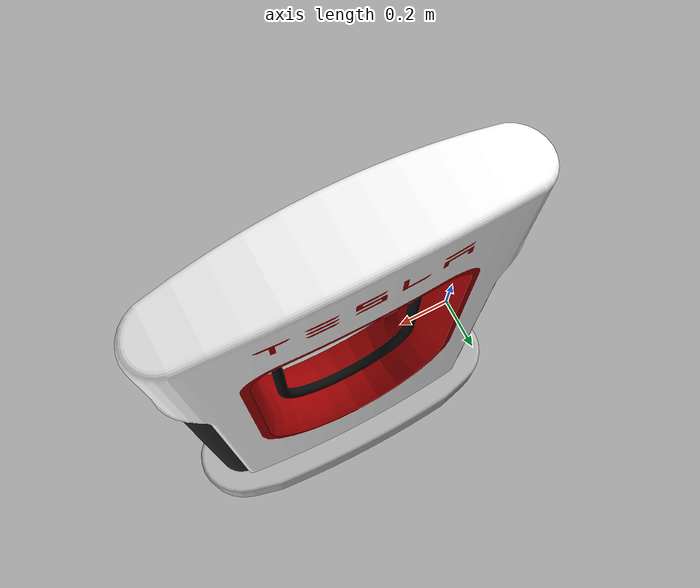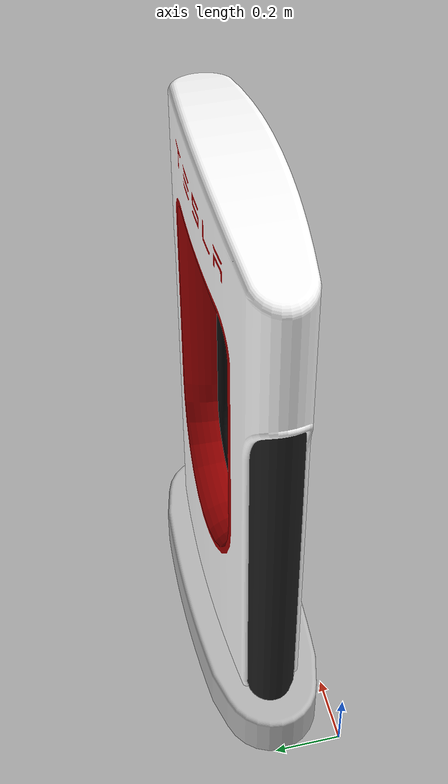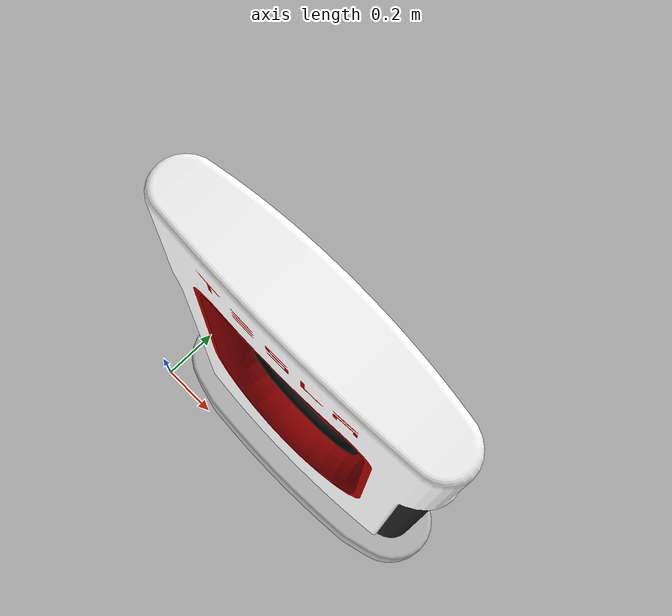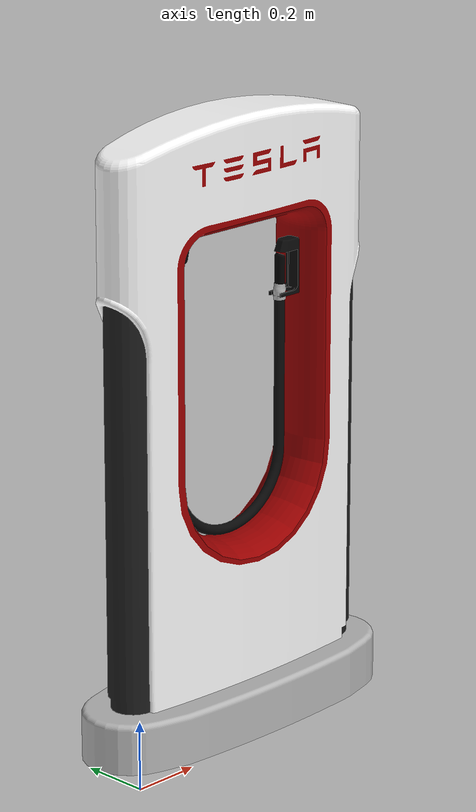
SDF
<?xml version="1.0" ?>
<sdf version="1.6">
  <model name="plant">
    <static>true</static>
    <link name="link">
      <visual name="visual">
        <geometry>
          <mesh>
            <uri>file:///home/kyshima/gazebo_ws/src/plugins/models/charger3/charger.dae</uri>
	    <scale>1 1 1</scale>
          </mesh>
        </geometry>
      </visual>
    </link>
  </model>
</sdf>
